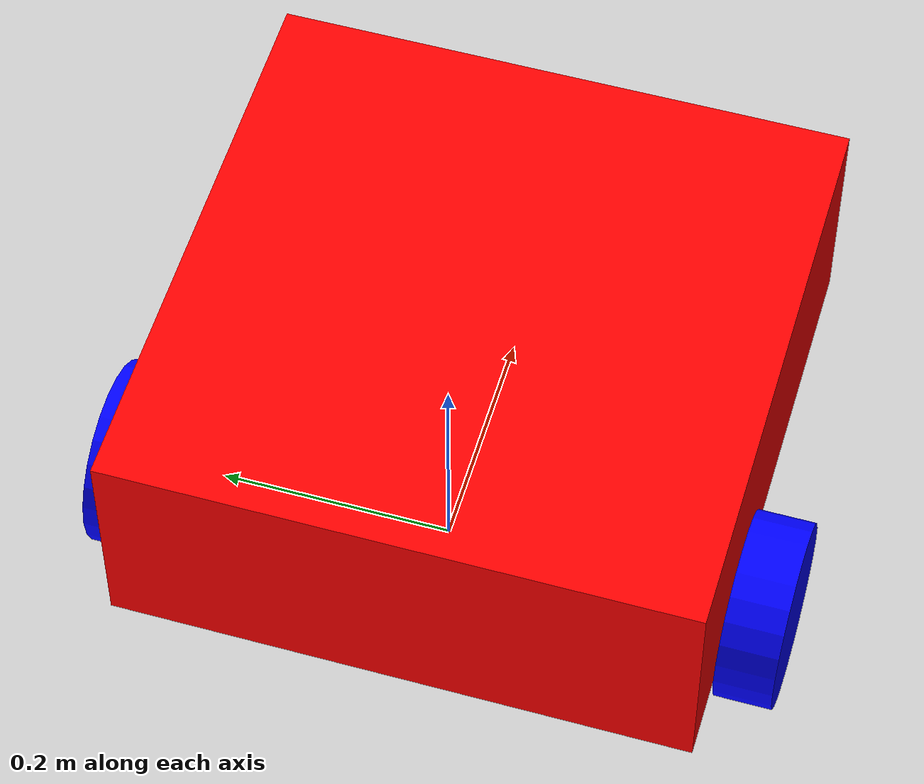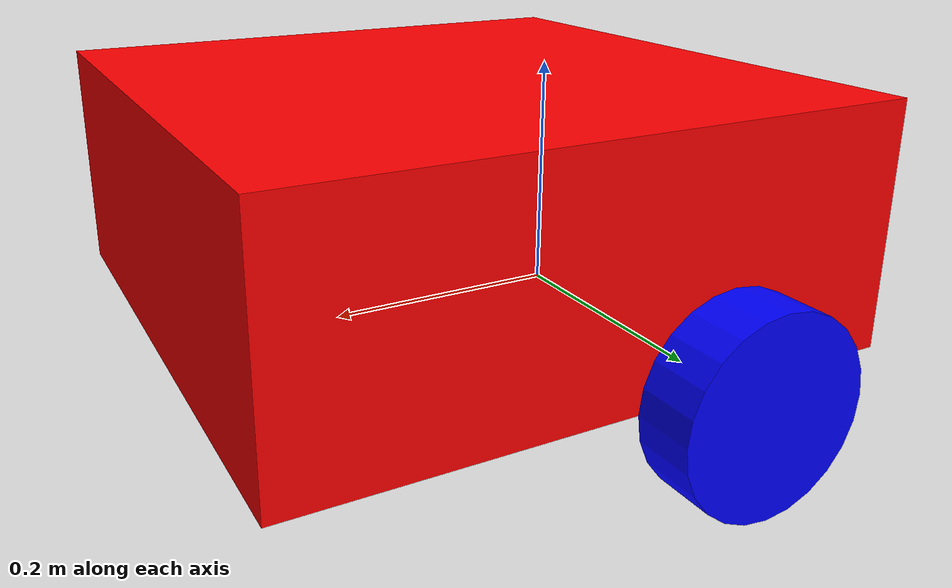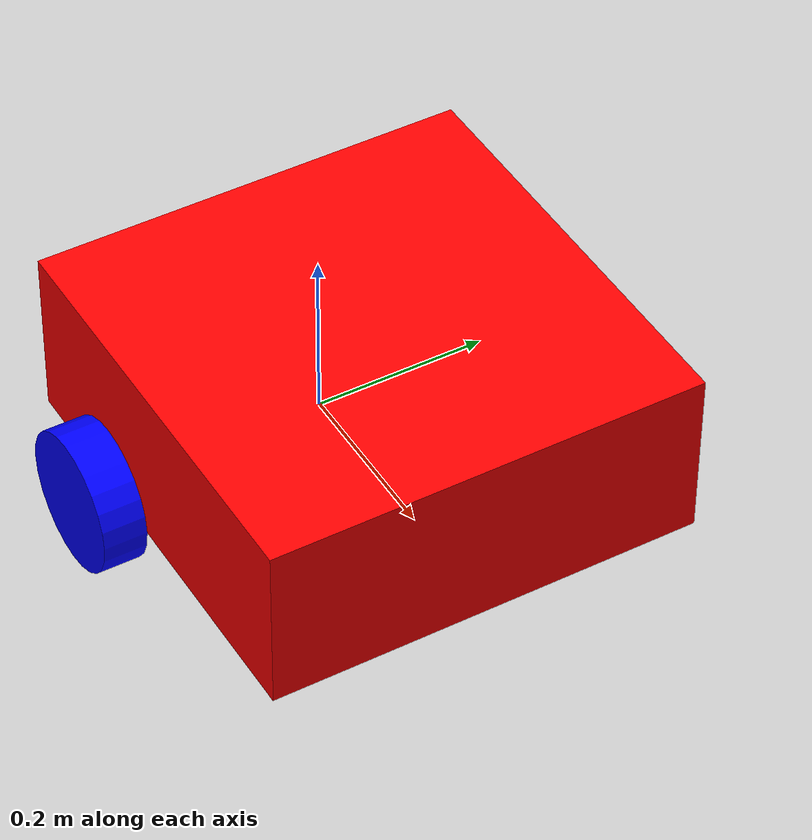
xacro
<?xml version="1.0"?>
<robot xmlns:xacro="https://www.ros.org/wiki/xacro">

    <material name="red">
        <color rgba="1 0 0 1"/>
    </material>

    <material name="blue">
        <color rgba="0 0 1 1"/>
    </material>

    <material name="orange">
        <color rgba="1 0.3686 0.0196 1"/>
    </material>

    <material name="black">
        <color rgba="0 0 0 1"/>
    </material>

    <material name="green">
        <color rgba="0 1 0 1"/>
    </material>

    <!-- BASE LINK -->

    <link name="base_link"/>

    <!-- CHASSIS -->

    <link name="chassis">
        <visual>
            <origin xyz="0.25 0 0.1" rpy="0 0 0"/>
            <geometry>
                <box size="0.5 0.5 0.2"/>
            </geometry>
            <material name="red"/>
        </visual>

        <collision>
            <origin xyz="0.25 0 0.1" rpy="0 0 0"/>
            <geometry>
                <box size="0.5 0.5 0.2"/>
            </geometry>
        </collision>

        <inertial>
            <origin xyz="0.25 0 0.1" rpy="0 0 0"/>
            <mass value="5.0"/>
            <inertia
                ixx="0.1208"
                iyy="0.1208"
                izz="0.2083"
                ixy="0.0"
                ixz="0.0"
                iyz="0.0"/>
        </inertial>

    </link>

    <gazebo reference="chassis">
        <material>Gazebo/Red</material>
    </gazebo>

    <joint name="base_joint" type="fixed">
        <parent link="base_link"/>
        <child link="chassis"/>
        <origin xyz= "-0.15 0 0" rpy="0 0 0"/>
    </joint>

    <!-- LEFT WHEEL -->

    <joint name="left_wheel_joint" type="continuous">
        <parent link="base_link"/>
        <child link="left_wheel"/>
        <origin xyz="0 0.275 0" rpy="-1.5708 0 0"/>
        <axis xyz="0 0 1"/>
    </joint>

    <link name="left_wheel">
        <visual>
            <origin xyz="0 0 0" rpy="0 0 0"/>
            <geometry>
                <cylinder radius="0.08" length="0.05"/>
            </geometry>
            <material name="blue"/>
        </visual>

        <collision>
            <origin xyz="0 0 0" rpy="0 0 0"/>
            <geometry>
                <cylinder radius="0.08" length="0.05"/>
            </geometry>

        </collision>

        <inertial>
            <origin xyz="0 0 0" rpy="0 0 0"/>
            <mass value="2.0"/>
            <inertia
                ixx="0.0010"
                iyy="0.0010"
                izz="0.0016"
                ixy="0.0"
                ixz="0.0"
                iyz="0.0"/>
        </inertial>

    </link>

    <gazebo reference="left_wheel">
        <material>Gazebo/Blue</material>
    </gazebo>

    <!-- RIGHT WHEEL -->

    <joint name="right_wheel_joint" type="continuous">
        <parent link="base_link"/>
        <child link="right_wheel"/>
        <origin xyz="0 -0.275 0" rpy="-1.5708 0 0"/>
        <axis xyz="0 0 1"/>
    </joint>

    <link name="right_wheel">
        <visual>
            <origin xyz="0 0 0" rpy="0 0 0"/>
            <geometry>
                <cylinder radius="0.08" length="0.05"/>
            </geometry>
            <material name="blue"/>
        </visual>
        <collision>
            <origin xyz="0 0 0" rpy="0 0 0"/>
            <geometry>
                <cylinder radius="0.08" length="0.05"/>
            </geometry>

        </collision>

        <inertial>
            <origin xyz="0 0 0" rpy="0 0 0"/>
            <mass value="2.0"/>
            <inertia
                ixx="0.0010"
                iyy="0.0010"
                izz="0.0016"
                ixy="0.0"
                ixz="0.0"
                iyz="0.0"/>
        </inertial>

    </link>

    <gazebo reference="right_wheel">
        <material>Gazebo/Blue</material>
    </gazebo>

    <!-- CASTER WHEEL -->

    <joint name="caster_wheel_joint" type="fixed">
        <parent link="chassis"/>
        <child link="caster_wheel"/>
        <origin xyz="0.38 0 0" rpy="0 0 0"/>
    </joint>

    <link name= "caster_wheel">
        <visual>
            <origin xyz="0 0 0" rpy="0 0 0"/>
            <geometry>
                <sphere radius="0.08"/>
            </geometry>
            <material name="black"/>
        </visual>
        <collision>
            <origin xyz="0 0 0" rpy="0 0 0"/>
            <geometry>
                <sphere radius="0.08"/>
            </geometry>

        </collision>

        <inertial>
            <origin xyz="0 0 0" rpy="0 0 0"/>
            <mass value="0.1"/>
            <inertia
                ixx="0.00026"
                iyy="0.00026"
                izz="0.00026"
                ixy="0.0"
                ixz="0.0"
                iyz="0.0"/>
        </inertial>

    </link>

    <gazebo reference="caster_wheel">
        <material>Gazebo/Black</material>
        <mu1 value="0.1"/>
        <mu2 value="0.1"/>
    </gazebo>
</robot>
